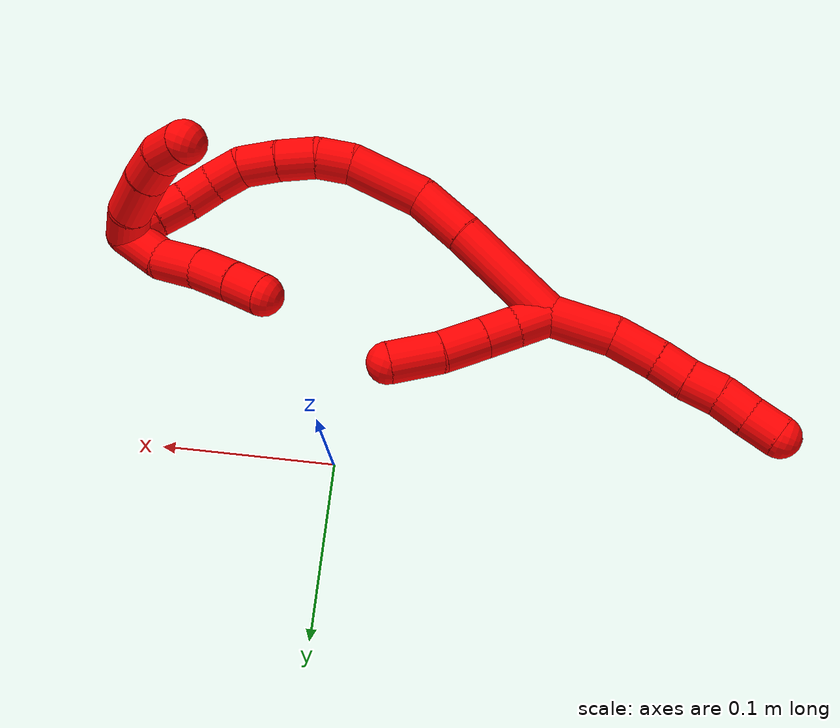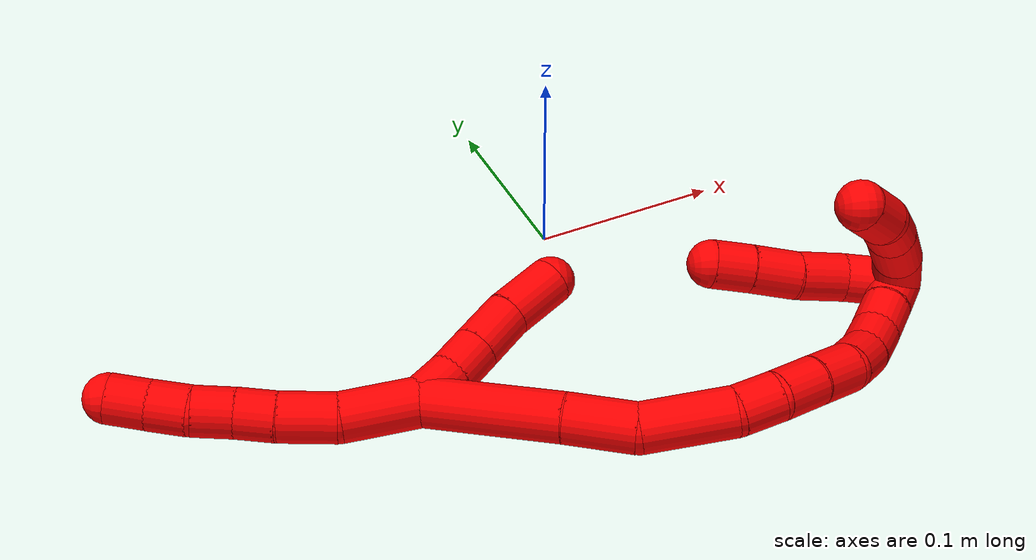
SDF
<sdf version="1.7">
 <world name="default">
  <model name="photoneo_s_sensor">
   <static>1</static>
   <pose>0 0 2 1.57079 1.57079 3.14159</pose>
   <link name="link">
    <inertial><mass>0.1</mass></inertial>
    <sensor name="sensor" type="depth">
     <update_rate>30</update_rate>
     <camera>
      <horizontal_fov>1.22</horizontal_fov>
      <image><width>1920</width><height>1200</height><format>B8G8R8</format></image>
      <clip><near>0.1</near><far>4</far></clip>
      <depth_camera><output>points</output></depth_camera>
     </camera>
     <plugin name="camera_plugin" filename="libgazebo_ros_depth_camera.so">
      <baseline>0.2</baseline>
      <alwaysOn>1</alwaysOn>
      <updateRate>0.0</updateRate>
      <cameraName>camera_ir</cameraName>
      <imageTopicName>/camera/color/image_raw</imageTopicName>
      <cameraInfoTopicName>/camera/color/camera_info</cameraInfoTopicName>
      <depthImageTopicName>/camera/depth/image_raw</depthImageTopicName>
      <depthImageCameraInfoTopicName>/camera/depth/camera_info</depthImageCameraInfoTopicName>
      <pointCloudTopicName>/camera/depth/points</pointCloudTopicName>
      <frameName>fr_optical</frameName>
      <pointCloudCutoff>0.1</pointCloudCutoff>
      <pointCloudCutoffMax>2.0</pointCloudCutoffMax>
      <distortionK1>0</distortionK1>
      <distortionK2>0</distortionK2>
      <distortionK3>0</distortionK3>
      <distortionT1>0</distortionT1>
      <distortionT2>0</distortionT2>
      <CxPrime>0</CxPrime>
      <Cx>0</Cx>
      <Cy>0</Cy>
      <focalLength>0</focalLength>
      <hackBaseline>0</hackBaseline>
     </plugin>
    </sensor>
   </link>
  </model>
  <model name="bin">
   <static>1</static>
   <link name="bottom">
    <collision name="collision-bottom">
     <pose>0 0 -0.01 0 -0 0</pose>
     <geometry><box><size>0.8 0.6 0.02</size></box></geometry>
     <surface>
      <friction><ode><mu>100</mu><mu2>100</mu2></ode></friction>
      <contact><collide_bitmask>65535</collide_bitmask></contact>
     </surface>
    </collision>
   </link>
   <link name="west_wall">
    <collision name="collision-west_wall">
     <pose>-0.41 0 0.1 0 -0 0</pose>
     <geometry><box><size>0.02 0.6 0.2</size></box></geometry>
     <surface>
      <friction><ode><mu>100</mu><mu2>100</mu2></ode></friction>
      <contact><collide_bitmask>65535</collide_bitmask></contact>
     </surface>
    </collision>
   </link>
   <link name="east_wall">
    <collision name="collision-east_wall">
     <pose>0.41 0 0.1 0 -0 0</pose>
     <geometry><box><size>0.02 0.6 0.2</size></box></geometry>
     <surface>
      <friction><ode><mu>100</mu><mu2>100</mu2></ode></friction>
      <contact><collide_bitmask>65535</collide_bitmask></contact>
     </surface>
    </collision>
   </link>
   <link name="south_wall">
    <collision name="collision-south_wall">
     <pose>0 -0.31 0.1 0 -0 0</pose>
     <geometry><box><size>0.8 0.02 0.2</size></box></geometry>
     <surface>
      <friction><ode><mu>100</mu><mu2>100</mu2></ode></friction>
      <contact><collide_bitmask>65535</collide_bitmask></contact>
     </surface>
    </collision>
   </link>
   <link name="north_wall">
    <collision name="collision-north_wall">
     <pose>0 0.31 0.1 0 -0 0</pose>
     <geometry><box><size>0.8 0.02 0.2</size></box></geometry>
     <surface>
      <friction><ode><mu>100</mu><mu2>100</mu2></ode></friction>
      <contact><collide_bitmask>65535</collide_bitmask></contact>
     </surface>
    </collision>
   </link>
  </model>
  <model name="2">
   <static>0</static>
   <link name="2">
    <collision name="collision-cylinder-e_1_2_8">
     <pose>0.0016 0.001524 -0.019834 -3.06493 0.080258 -1.61665</pose>
     <geometry><cylinder><radius>0.0125</radius><length>0.039914</length></cylinder></geometry>
     <surface>
      <friction><ode><mu>1.16</mu><mu2>1.16</mu2><slip1>0</slip1><slip2>0</slip2></ode></friction>
      <contact><ode><kp>1e+06</kp><kd>1</kd><max_vel>0</max_vel><min_depth>0.001</min_depth></ode></contact>
     </surface>
    </collision>
    <visual name="visual-cylinder-e_1_2_8">
     <pose>0.0016 0.001524 -0.019834 -3.06493 0.080258 -1.61665</pose>
     <geometry><cylinder><radius>0.0125</radius><length>0.039914</length></cylinder></geometry>
     <material><ambient>1 0 0 1</ambient></material>
    </visual>
    <collision name="collision-cylinder-e_2_8_9">
     <pose>0.001254 0.002547 -0.054053 3.10681 -0.134389 -2.63577</pose>
     <geometry><cylinder><radius>0.0125</radius><length>0.029049</length></cylinder></geometry>
     <surface>
      <friction><ode><mu>1.16</mu><mu2>1.16</mu2><slip1>0</slip1><slip2>0</slip2></ode></friction>
      <contact><ode><kp>1e+06</kp><kd>1</kd><max_vel>0</max_vel><min_depth>0.001</min_depth></ode></contact>
     </surface>
    </collision>
    <visual name="visual-cylinder-e_2_8_9">
     <pose>0.001254 0.002547 -0.054053 3.10681 -0.134389 -2.63577</pose>
     <geometry><cylinder><radius>0.0125</radius><length>0.029049</length></cylinder></geometry>
     <material><ambient>1 0 0 1</ambient></material>
    </visual>
    <collision name="collision-cylinder-e_3_9_10">
     <pose>-0.002859 0.001289 -0.078248 3.06459 -0.216809 -2.4612</pose>
     <geometry><cylinder><radius>0.0125</radius><length>0.02015</length></cylinder></geometry>
     <surface>
      <friction><ode><mu>1.16</mu><mu2>1.16</mu2><slip1>0</slip1><slip2>0</slip2></ode></friction>
      <contact><ode><kp>1e+06</kp><kd>1</kd><max_vel>0</max_vel><min_depth>0.001</min_depth></ode></contact>
     </surface>
    </collision>
    <visual name="visual-cylinder-e_3_9_10">
     <pose>-0.002859 0.001289 -0.078248 3.06459 -0.216809 -2.4612</pose>
     <geometry><cylinder><radius>0.0125</radius><length>0.02015</length></cylinder></geometry>
     <material><ambient>1 0 0 1</ambient></material>
    </visual>
    <collision name="collision-cylinder-e_4_10_11">
     <pose>-0.005943 -0.000512 -0.09838 3.04074 -0.088127 -1.43614</pose>
     <geometry><cylinder><radius>0.0125</radius><length>0.02083</length></cylinder></geometry>
     <surface>
      <friction><ode><mu>1.16</mu><mu2>1.16</mu2><slip1>0</slip1><slip2>0</slip2></ode></friction>
      <contact><ode><kp>1e+06</kp><kd>1</kd><max_vel>0</max_vel><min_depth>0.001</min_depth></ode></contact>
     </surface>
    </collision>
    <visual name="visual-cylinder-e_4_10_11">
     <pose>-0.005943 -0.000512 -0.09838 3.04074 -0.088127 -1.43614</pose>
     <geometry><cylinder><radius>0.0125</radius><length>0.02083</length></cylinder></geometry>
     <material><ambient>1 0 0 1</ambient></material>
    </visual>
    <collision name="collision-cylinder-e_5_11_12">
     <pose>-0.009537 -0.002526 -0.118313 3.04106 -0.270317 -2.43293</pose>
     <geometry><cylinder><radius>0.0125</radius><length>0.020047</length></cylinder></geometry>
     <surface>
      <friction><ode><mu>1.16</mu><mu2>1.16</mu2><slip1>0</slip1><slip2>0</slip2></ode></friction>
      <contact><ode><kp>1e+06</kp><kd>1</kd><max_vel>0</max_vel><min_depth>0.001</min_depth></ode></contact>
     </surface>
    </collision>
    <visual name="visual-cylinder-e_5_11_12">
     <pose>-0.009537 -0.002526 -0.118313 3.04106 -0.270317 -2.43293</pose>
     <geometry><cylinder><radius>0.0125</radius><length>0.020047</length></cylinder></geometry>
     <material><ambient>1 0 0 1</ambient></material>
    </visual>
    <collision name="collision-cylinder-e_6_12_6">
     <pose>-0.0145 -0.004906 -0.137561 2.99632 -0.230567 -2.01956</pose>
     <geometry><cylinder><radius>0.0125</radius><length>0.02001</length></cylinder></geometry>
     <surface>
      <friction><ode><mu>1.16</mu><mu2>1.16</mu2><slip1>0</slip1><slip2>0</slip2></ode></friction>
      <contact><ode><kp>1e+06</kp><kd>1</kd><max_vel>0</max_vel><min_depth>0.001</min_depth></ode></contact>
     </surface>
    </collision>
    <visual name="visual-cylinder-e_6_12_6">
     <pose>-0.0145 -0.004906 -0.137561 2.99632 -0.230567 -2.01956</pose>
     <geometry><cylinder><radius>0.0125</radius><length>0.02001</length></cylinder></geometry>
     <material><ambient>1 0 0 1</ambient></material>
    </visual>
    <collision name="collision-cylinder-e_1_2_13">
     <pose>-0.00728 -0.001985 0.00773 0.251372 -0.739488 -0.097862</pose>
     <geometry><cylinder><radius>0.0125</radius><length>0.021606</length></cylinder></geometry>
     <surface>
      <friction><ode><mu>1.16</mu><mu2>1.16</mu2><slip1>0</slip1><slip2>0</slip2></ode></friction>
      <contact><ode><kp>1e+06</kp><kd>1</kd><max_vel>0</max_vel><min_depth>0.001</min_depth></ode></contact>
     </surface>
    </collision>
    <visual name="visual-cylinder-e_1_2_13">
     <pose>-0.00728 -0.001985 0.00773 0.251372 -0.739488 -0.097862</pose>
     <geometry><cylinder><radius>0.0125</radius><length>0.021606</length></cylinder></geometry>
     <material><ambient>1 0 0 1</ambient></material>
    </visual>
    <collision name="collision-cylinder-e_2_13_14">
     <pose>-0.021387 -0.00692 0.022498 0.396832 -0.729878 -0.153331</pose>
     <geometry><cylinder><radius>0.0125</radius><length>0.020477</length></cylinder></geometry>
     <surface>
      <friction><ode><mu>1.16</mu><mu2>1.16</mu2><slip1>0</slip1><slip2>0</slip2></ode></friction>
      <contact><ode><kp>1e+06</kp><kd>1</kd><max_vel>0</max_vel><min_depth>0.001</min_depth></ode></contact>
     </surface>
    </collision>
    <visual name="visual-cylinder-e_2_13_14">
     <pose>-0.021387 -0.00692 0.022498 0.396832 -0.729878 -0.153331</pose>
     <geometry><cylinder><radius>0.0125</radius><length>0.020477</length></cylinder></geometry>
     <material><ambient>1 0 0 1</ambient></material>
    </visual>
    <collision name="collision-cylinder-e_3_14_15">
     <pose>-0.036977 -0.013828 0.038744 0.406072 -0.718414 -0.154303</pose>
     <geometry><cylinder><radius>0.0125</radius><length>0.026626</length></cylinder></geometry>
     <surface>
      <friction><ode><mu>1.16</mu><mu2>1.16</mu2><slip1>0</slip1><slip2>0</slip2></ode></friction>
      <contact><ode><kp>1e+06</kp><kd>1</kd><max_vel>0</max_vel><min_depth>0.001</min_depth></ode></contact>
     </surface>
    </collision>
    <visual name="visual-cylinder-e_3_14_15">
     <pose>-0.036977 -0.013828 0.038744 0.406072 -0.718414 -0.154303</pose>
     <geometry><cylinder><radius>0.0125</radius><length>0.026626</length></cylinder></geometry>
     <material><ambient>1 0 0 1</ambient></material>
    </visual>
    <collision name="collision-cylinder-e_4_15_5">
     <pose>-0.054537 -0.021753 0.060266 0.311585 -0.597206 -0.096616</pose>
     <geometry><cylinder><radius>0.0125</radius><length>0.03129</length></cylinder></geometry>
     <surface>
      <friction><ode><mu>1.16</mu><mu2>1.16</mu2><slip1>0</slip1><slip2>0</slip2></ode></friction>
      <contact><ode><kp>1e+06</kp><kd>1</kd><max_vel>0</max_vel><min_depth>0.001</min_depth></ode></contact>
     </surface>
    </collision>
    <visual name="visual-cylinder-e_4_15_5">
     <pose>-0.054537 -0.021753 0.060266 0.311585 -0.597206 -0.096616</pose>
     <geometry><cylinder><radius>0.0125</radius><length>0.03129</length></cylinder></geometry>
     <material><ambient>1 0 0 1</ambient></material>
    </visual>
    <collision name="collision-cylinder-e_1_2_16">
     <pose>0.013122 -0.000318 0.032404 0.009815 0.384734 0.001912</pose>
     <geometry><cylinder><radius>0.0125</radius><length>0.069923</length></cylinder></geometry>
     <surface>
      <friction><ode><mu>1.16</mu><mu2>1.16</mu2><slip1>0</slip1><slip2>0</slip2></ode></friction>
      <contact><ode><kp>1e+06</kp><kd>1</kd><max_vel>0</max_vel><min_depth>0.001</min_depth></ode></contact>
     </surface>
    </collision>
    <visual name="visual-cylinder-e_1_2_16">
     <pose>0.013122 -0.000318 0.032404 0.009815 0.384734 0.001912</pose>
     <geometry><cylinder><radius>0.0125</radius><length>0.069923</length></cylinder></geometry>
     <material><ambient>1 0 0 1</ambient></material>
    </visual>
    <collision name="collision-cylinder-e_2_16_17">
     <pose>0.032098 0.000306 0.08134 -0.056957 0.3399 -0.009777</pose>
     <geometry><cylinder><radius>0.0125</radius><length>0.035125</length></cylinder></geometry>
     <surface>
      <friction><ode><mu>1.16</mu><mu2>1.16</mu2><slip1>0</slip1><slip2>0</slip2></ode></friction>
      <contact><ode><kp>1e+06</kp><kd>1</kd><max_vel>0</max_vel><min_depth>0.001</min_depth></ode></contact>
     </surface>
    </collision>
    <visual name="visual-cylinder-e_2_16_17">
     <pose>0.032098 0.000306 0.08134 -0.056957 0.3399 -0.009777</pose>
     <geometry><cylinder><radius>0.0125</radius><length>0.035125</length></cylinder></geometry>
     <material><ambient>1 0 0 1</ambient></material>
    </visual>
    <collision name="collision-cylinder-e_3_17_18">
     <pose>0.039164 -0.001857 0.120724 0.135103 0.052441 0.003549</pose>
     <geometry><cylinder><radius>0.0125</radius><length>0.046191</length></cylinder></geometry>
     <surface>
      <friction><ode><mu>1.16</mu><mu2>1.16</mu2><slip1>0</slip1><slip2>0</slip2></ode></friction>
      <contact><ode><kp>1e+06</kp><kd>1</kd><max_vel>0</max_vel><min_depth>0.001</min_depth></ode></contact>
     </surface>
    </collision>
    <visual name="visual-cylinder-e_3_17_18">
     <pose>0.039164 -0.001857 0.120724 0.135103 0.052441 0.003549</pose>
     <geometry><cylinder><radius>0.0125</radius><length>0.046191</length></cylinder></geometry>
     <material><ambient>1 0 0 1</ambient></material>
    </visual>
    <collision name="collision-cylinder-e_4_18_19">
     <pose>0.038046 -0.006637 0.153859 0.161298 -0.219969 -0.01785</pose>
     <geometry><cylinder><radius>0.0125</radius><length>0.021348</length></cylinder></geometry>
     <surface>
      <friction><ode><mu>1.16</mu><mu2>1.16</mu2><slip1>0</slip1><slip2>0</slip2></ode></friction>
      <contact><ode><kp>1e+06</kp><kd>1</kd><max_vel>0</max_vel><min_depth>0.001</min_depth></ode></contact>
     </surface>
    </collision>
    <visual name="visual-cylinder-e_4_18_19">
     <pose>0.038046 -0.006637 0.153859 0.161298 -0.219969 -0.01785</pose>
     <geometry><cylinder><radius>0.0125</radius><length>0.021348</length></cylinder></geometry>
     <material><ambient>1 0 0 1</ambient></material>
    </visual>
    <collision name="collision-cylinder-e_5_19_20">
     <pose>0.030623 -0.008425 0.174664 0.010964 -0.450734 -0.002514</pose>
     <geometry><cylinder><radius>0.0125</radius><length>0.023385</length></cylinder></geometry>
     <surface>
      <friction><ode><mu>1.16</mu><mu2>1.16</mu2><slip1>0</slip1><slip2>0</slip2></ode></friction>
      <contact><ode><kp>1e+06</kp><kd>1</kd><max_vel>0</max_vel><min_depth>0.001</min_depth></ode></contact>
     </surface>
    </collision>
    <visual name="visual-cylinder-e_5_19_20">
     <pose>0.030623 -0.008425 0.174664 0.010964 -0.450734 -0.002514</pose>
     <geometry><cylinder><radius>0.0125</radius><length>0.023385</length></cylinder></geometry>
     <material><ambient>1 0 0 1</ambient></material>
    </visual>
    <collision name="collision-cylinder-e_6_20_21">
     <pose>0.019834 -0.007891 0.195201 -0.064745 -0.516267 0.0171</pose>
     <geometry><cylinder><radius>0.0125</radius><length>0.023075</length></cylinder></geometry>
     <surface>
      <friction><ode><mu>1.16</mu><mu2>1.16</mu2><slip1>0</slip1><slip2>0</slip2></ode></friction>
      <contact><ode><kp>1e+06</kp><kd>1</kd><max_vel>0</max_vel><min_depth>0.001</min_depth></ode></contact>
     </surface>
    </collision>
    <visual name="visual-cylinder-e_6_20_21">
     <pose>0.019834 -0.007891 0.195201 -0.064745 -0.516267 0.0171</pose>
     <geometry><cylinder><radius>0.0125</radius><length>0.023075</length></cylinder></geometry>
     <material><ambient>1 0 0 1</ambient></material>
    </visual>
    <collision name="collision-cylinder-e_7_21_22">
     <pose>0.006421 -0.006112 0.211969 -0.165819 -0.84494 0.074679</pose>
     <geometry><cylinder><radius>0.0125</radius><length>0.020638</length></cylinder></geometry>
     <surface>
      <friction><ode><mu>1.16</mu><mu2>1.16</mu2><slip1>0</slip1><slip2>0</slip2></ode></friction>
      <contact><ode><kp>1e+06</kp><kd>1</kd><max_vel>0</max_vel><min_depth>0.001</min_depth></ode></contact>
     </surface>
    </collision>
    <visual name="visual-cylinder-e_7_21_22">
     <pose>0.006421 -0.006112 0.211969 -0.165819 -0.84494 0.074679</pose>
     <geometry><cylinder><radius>0.0125</radius><length>0.020638</length></cylinder></geometry>
     <material><ambient>1 0 0 1</ambient></material>
    </visual>
    <collision name="collision-cylinder-e_8_22_23">
     <pose>-0.00965 -0.00572 0.22429 0.13199 -0.979098 -0.070399</pose>
     <geometry><cylinder><radius>0.0125</radius><length>0.020129</length></cylinder></geometry>
     <surface>
      <friction><ode><mu>1.16</mu><mu2>1.16</mu2><slip1>0</slip1><slip2>0</slip2></ode></friction>
      <contact><ode><kp>1e+06</kp><kd>1</kd><max_vel>0</max_vel><min_depth>0.001</min_depth></ode></contact>
     </surface>
    </collision>
    <visual name="visual-cylinder-e_8_22_23">
     <pose>-0.00965 -0.00572 0.22429 0.13199 -0.979098 -0.070399</pose>
     <geometry><cylinder><radius>0.0125</radius><length>0.020129</length></cylinder></geometry>
     <material><ambient>1 0 0 1</ambient></material>
    </visual>
    <collision name="collision-cylinder-e_9_23_24">
     <pose>-0.026042 -0.009101 0.235332 0.449497 -0.923098 -0.22644</pose>
     <geometry><cylinder><radius>0.0125</radius><length>0.020159</length></cylinder></geometry>
     <surface>
      <friction><ode><mu>1.16</mu><mu2>1.16</mu2><slip1>0</slip1><slip2>0</slip2></ode></friction>
      <contact><ode><kp>1e+06</kp><kd>1</kd><max_vel>0</max_vel><min_depth>0.001</min_depth></ode></contact>
     </surface>
    </collision>
    <visual name="visual-cylinder-e_9_23_24">
     <pose>-0.026042 -0.009101 0.235332 0.449497 -0.923098 -0.22644</pose>
     <geometry><cylinder><radius>0.0125</radius><length>0.020159</length></cylinder></geometry>
     <material><ambient>1 0 0 1</ambient></material>
    </visual>
    <collision name="collision-cylinder-e_10_24_1">
     <pose>-0.042371 -0.01365 0.246092 0.346328 -0.975423 -0.185039</pose>
     <geometry><cylinder><radius>0.0125</radius><length>0.020027</length></cylinder></geometry>
     <surface>
      <friction><ode><mu>1.16</mu><mu2>1.16</mu2><slip1>0</slip1><slip2>0</slip2></ode></friction>
      <contact><ode><kp>1e+06</kp><kd>1</kd><max_vel>0</max_vel><min_depth>0.001</min_depth></ode></contact>
     </surface>
    </collision>
    <visual name="visual-cylinder-e_10_24_1">
     <pose>-0.042371 -0.01365 0.246092 0.346328 -0.975423 -0.185039</pose>
     <geometry><cylinder><radius>0.0125</radius><length>0.020027</length></cylinder></geometry>
     <material><ambient>1 0 0 1</ambient></material>
    </visual>
    <collision name="collision-cylinder-e_1_1_25">
     <pose>-0.044823 -0.026418 0.248666 1.81518 0.480771 0.608064</pose>
     <geometry><cylinder><radius>0.0125</radius><length>0.025252</length></cylinder></geometry>
     <surface>
      <friction><ode><mu>1.16</mu><mu2>1.16</mu2><slip1>0</slip1><slip2>0</slip2></ode></friction>
      <contact><ode><kp>1e+06</kp><kd>1</kd><max_vel>0</max_vel><min_depth>0.001</min_depth></ode></contact>
     </surface>
    </collision>
    <visual name="visual-cylinder-e_1_1_25">
     <pose>-0.044823 -0.026418 0.248666 1.81518 0.480771 0.608064</pose>
     <geometry><cylinder><radius>0.0125</radius><length>0.025252</length></cylinder></geometry>
     <material><ambient>1 0 0 1</ambient></material>
    </visual>
    <collision name="collision-cylinder-e_2_25_26">
     <pose>-0.029628 -0.048665 0.240041 2.05003 0.630019 0.984925</pose>
     <geometry><cylinder><radius>0.0125</radius><length>0.031758</length></cylinder></geometry>
     <surface>
      <friction><ode><mu>1.16</mu><mu2>1.16</mu2><slip1>0</slip1><slip2>0</slip2></ode></friction>
      <contact><ode><kp>1e+06</kp><kd>1</kd><max_vel>0</max_vel><min_depth>0.001</min_depth></ode></contact>
     </surface>
    </collision>
    <visual name="visual-cylinder-e_2_25_26">
     <pose>-0.029628 -0.048665 0.240041 2.05003 0.630019 0.984925</pose>
     <geometry><cylinder><radius>0.0125</radius><length>0.031758</length></cylinder></geometry>
     <material><ambient>1 0 0 1</ambient></material>
    </visual>
    <collision name="collision-cylinder-e_3_26_27">
     <pose>-0.013811 -0.067258 0.229359 2.15499 0.642163 1.10799</pose>
     <geometry><cylinder><radius>0.0125</radius><length>0.02158</length></cylinder></geometry>
     <surface>
      <friction><ode><mu>1.16</mu><mu2>1.16</mu2><slip1>0</slip1><slip2>0</slip2></ode></friction>
      <contact><ode><kp>1e+06</kp><kd>1</kd><max_vel>0</max_vel><min_depth>0.001</min_depth></ode></contact>
     </surface>
    </collision>
    <visual name="visual-cylinder-e_3_26_27">
     <pose>-0.013811 -0.067258 0.229359 2.15499 0.642163 1.10799</pose>
     <geometry><cylinder><radius>0.0125</radius><length>0.02158</length></cylinder></geometry>
     <material><ambient>1 0 0 1</ambient></material>
    </visual>
    <collision name="collision-cylinder-e_4_27_4">
     <pose>-0.003003 -0.080928 0.217248 2.42011 0.417936 1.02422</pose>
     <geometry><cylinder><radius>0.0125</radius><length>0.02141</length></cylinder></geometry>
     <surface>
      <friction><ode><mu>1.16</mu><mu2>1.16</mu2><slip1>0</slip1><slip2>0</slip2></ode></friction>
      <contact><ode><kp>1e+06</kp><kd>1</kd><max_vel>0</max_vel><min_depth>0.001</min_depth></ode></contact>
     </surface>
    </collision>
    <visual name="visual-cylinder-e_4_27_4">
     <pose>-0.003003 -0.080928 0.217248 2.42011 0.417936 1.02422</pose>
     <geometry><cylinder><radius>0.0125</radius><length>0.02141</length></cylinder></geometry>
     <material><ambient>1 0 0 1</ambient></material>
    </visual>
    <collision name="collision-cylinder-e_1_1_28">
     <pose>-0.053757 -0.016648 0.237863 3.06096 -0.224525 -2.45436</pose>
     <geometry><cylinder><radius>0.0125</radius><length>0.027808</length></cylinder></geometry>
     <surface>
      <friction><ode><mu>1.16</mu><mu2>1.16</mu2><slip1>0</slip1><slip2>0</slip2></ode></friction>
      <contact><ode><kp>1e+06</kp><kd>1</kd><max_vel>0</max_vel><min_depth>0.001</min_depth></ode></contact>
     </surface>
    </collision>
    <visual name="visual-cylinder-e_1_1_28">
     <pose>-0.053757 -0.016648 0.237863 3.06096 -0.224525 -2.45436</pose>
     <geometry><cylinder><radius>0.0125</radius><length>0.027808</length></cylinder></geometry>
     <material><ambient>1 0 0 1</ambient></material>
    </visual>
    <collision name="collision-cylinder-e_2_28_29">
     <pose>-0.055402 -0.020157 0.211261 2.95898 0.108551 1.07104</pose>
     <geometry><cylinder><radius>0.0125</radius><length>0.026782</length></cylinder></geometry>
     <surface>
      <friction><ode><mu>1.16</mu><mu2>1.16</mu2><slip1>0</slip1><slip2>0</slip2></ode></friction>
      <contact><ode><kp>1e+06</kp><kd>1</kd><max_vel>0</max_vel><min_depth>0.001</min_depth></ode></contact>
     </surface>
    </collision>
    <visual name="visual-cylinder-e_2_28_29">
     <pose>-0.055402 -0.020157 0.211261 2.95898 0.108551 1.07104</pose>
     <geometry><cylinder><radius>0.0125</radius><length>0.026782</length></cylinder></geometry>
     <material><ambient>1 0 0 1</ambient></material>
    </visual>
    <collision name="collision-cylinder-e_3_29_30">
     <pose>-0.054055 -0.02557 0.186066 2.89906 -0.008312 -0.068181</pose>
     <geometry><cylinder><radius>0.0125</radius><length>0.024941</length></cylinder></geometry>
     <surface>
      <friction><ode><mu>1.16</mu><mu2>1.16</mu2><slip1>0</slip1><slip2>0</slip2></ode></friction>
      <contact><ode><kp>1e+06</kp><kd>1</kd><max_vel>0</max_vel><min_depth>0.001</min_depth></ode></contact>
     </surface>
    </collision>
    <visual name="visual-cylinder-e_3_29_30">
     <pose>-0.054055 -0.02557 0.186066 2.89906 -0.008312 -0.068181</pose>
     <geometry><cylinder><radius>0.0125</radius><length>0.024941</length></cylinder></geometry>
     <material><ambient>1 0 0 1</ambient></material>
    </visual>
    <collision name="collision-cylinder-e_4_30_3">
     <pose>-0.054545 -0.030609 0.16394 2.94033 -0.037788 -0.370013</pose>
     <geometry><cylinder><radius>0.0125</radius><length>0.020469</length></cylinder></geometry>
     <surface>
      <friction><ode><mu>1.16</mu><mu2>1.16</mu2><slip1>0</slip1><slip2>0</slip2></ode></friction>
      <contact><ode><kp>1e+06</kp><kd>1</kd><max_vel>0</max_vel><min_depth>0.001</min_depth></ode></contact>
     </surface>
    </collision>
    <visual name="visual-cylinder-e_4_30_3">
     <pose>-0.054545 -0.030609 0.16394 2.94033 -0.037788 -0.370013</pose>
     <geometry><cylinder><radius>0.0125</radius><length>0.020469</length></cylinder></geometry>
     <material><ambient>1 0 0 1</ambient></material>
    </visual>
    <collision name="collision-sphere-3">
     <pose>-0.054932 -0.032653 0.153919 0 -0 0</pose>
     <geometry><sphere><radius>0.0125</radius></sphere></geometry>
     <surface>
      <friction><ode><mu>1.16</mu><mu2>1.16</mu2><slip1>0</slip1><slip2>0</slip2></ode></friction>
      <contact><ode><kp>1e+06</kp><kd>1</kd><max_vel>0</max_vel><min_depth>0.001</min_depth></ode></contact>
     </surface>
    </collision>
    <visual name="visual-sphere-3">
     <pose>-0.054932 -0.032653 0.153919 0 -0 0</pose>
     <geometry><sphere><radius>0.0125</radius></sphere></geometry>
     <material><ambient>1 0 0 1</ambient></material>
    </visual>
    <collision name="collision-sphere-30">
     <pose>-0.054159 -0.028564 0.17396 0 -0 0</pose>
     <geometry><sphere><radius>0.0125</radius></sphere></geometry>
     <surface>
      <friction><ode><mu>1.16</mu><mu2>1.16</mu2><slip1>0</slip1><slip2>0</slip2></ode></friction>
      <contact><ode><kp>1e+06</kp><kd>1</kd><max_vel>0</max_vel><min_depth>0.001</min_depth></ode></contact>
     </surface>
    </collision>
    <visual name="visual-sphere-30">
     <pose>-0.054159 -0.028564 0.17396 0 -0 0</pose>
     <geometry><sphere><radius>0.0125</radius></sphere></geometry>
     <material><ambient>1 0 0 1</ambient></material>
    </visual>
    <collision name="collision-sphere-29">
     <pose>-0.053951 -0.022575 0.198171 0 -0 0</pose>
     <geometry><sphere><radius>0.0125</radius></sphere></geometry>
     <surface>
      <friction><ode><mu>1.16</mu><mu2>1.16</mu2><slip1>0</slip1><slip2>0</slip2></ode></friction>
      <contact><ode><kp>1e+06</kp><kd>1</kd><max_vel>0</max_vel><min_depth>0.001</min_depth></ode></contact>
     </surface>
    </collision>
    <visual name="visual-sphere-29">
     <pose>-0.053951 -0.022575 0.198171 0 -0 0</pose>
     <geometry><sphere><radius>0.0125</radius></sphere></geometry>
     <material><ambient>1 0 0 1</ambient></material>
    </visual>
    <collision name="collision-sphere-28">
     <pose>-0.056853 -0.01774 0.224352 0 -0 0</pose>
     <geometry><sphere><radius>0.0125</radius></sphere></geometry>
     <surface>
      <friction><ode><mu>1.16</mu><mu2>1.16</mu2><slip1>0</slip1><slip2>0</slip2></ode></friction>
      <contact><ode><kp>1e+06</kp><kd>1</kd><max_vel>0</max_vel><min_depth>0.001</min_depth></ode></contact>
     </surface>
    </collision>
    <visual name="visual-sphere-28">
     <pose>-0.056853 -0.01774 0.224352 0 -0 0</pose>
     <geometry><sphere><radius>0.0125</radius></sphere></geometry>
     <material><ambient>1 0 0 1</ambient></material>
    </visual>
    <collision name="collision-sphere-4">
     <pose>0.001342 -0.08739 0.209902 0 -0 0</pose>
     <geometry><sphere><radius>0.0125</radius></sphere></geometry>
     <surface>
      <friction><ode><mu>1.16</mu><mu2>1.16</mu2><slip1>0</slip1><slip2>0</slip2></ode></friction>
      <contact><ode><kp>1e+06</kp><kd>1</kd><max_vel>0</max_vel><min_depth>0.001</min_depth></ode></contact>
     </surface>
    </collision>
    <visual name="visual-sphere-4">
     <pose>0.001342 -0.08739 0.209902 0 -0 0</pose>
     <geometry><sphere><radius>0.0125</radius></sphere></geometry>
     <material><ambient>1 0 0 1</ambient></material>
    </visual>
    <collision name="collision-sphere-27">
     <pose>-0.007348 -0.074465 0.224594 0 -0 0</pose>
     <geometry><sphere><radius>0.0125</radius></sphere></geometry>
     <surface>
      <friction><ode><mu>1.16</mu><mu2>1.16</mu2><slip1>0</slip1><slip2>0</slip2></ode></friction>
      <contact><ode><kp>1e+06</kp><kd>1</kd><max_vel>0</max_vel><min_depth>0.001</min_depth></ode></contact>
     </surface>
    </collision>
    <visual name="visual-sphere-27">
     <pose>-0.007348 -0.074465 0.224594 0 -0 0</pose>
     <geometry><sphere><radius>0.0125</radius></sphere></geometry>
     <material><ambient>1 0 0 1</ambient></material>
    </visual>
    <collision name="collision-sphere-26">
     <pose>-0.020273 -0.06005 0.234125 0 -0 0</pose>
     <geometry><sphere><radius>0.0125</radius></sphere></geometry>
     <surface>
      <friction><ode><mu>1.16</mu><mu2>1.16</mu2><slip1>0</slip1><slip2>0</slip2></ode></friction>
      <contact><ode><kp>1e+06</kp><kd>1</kd><max_vel>0</max_vel><min_depth>0.001</min_depth></ode></contact>
     </surface>
    </collision>
    <visual name="visual-sphere-26">
     <pose>-0.020273 -0.06005 0.234125 0 -0 0</pose>
     <geometry><sphere><radius>0.0125</radius></sphere></geometry>
     <material><ambient>1 0 0 1</ambient></material>
    </visual>
    <collision name="collision-sphere-25">
     <pose>-0.038984 -0.03728 0.245957 0 -0 0</pose>
     <geometry><sphere><radius>0.0125</radius></sphere></geometry>
     <surface>
      <friction><ode><mu>1.16</mu><mu2>1.16</mu2><slip1>0</slip1><slip2>0</slip2></ode></friction>
      <contact><ode><kp>1e+06</kp><kd>1</kd><max_vel>0</max_vel><min_depth>0.001</min_depth></ode></contact>
     </surface>
    </collision>
    <visual name="visual-sphere-25">
     <pose>-0.038984 -0.03728 0.245957 0 -0 0</pose>
     <geometry><sphere><radius>0.0125</radius></sphere></geometry>
     <material><ambient>1 0 0 1</ambient></material>
    </visual>
    <collision name="collision-sphere-1">
     <pose>-0.050662 -0.015556 0.251374 0 -0 0</pose>
     <geometry><sphere><radius>0.0125</radius></sphere></geometry>
     <surface>
      <friction><ode><mu>1.16</mu><mu2>1.16</mu2><slip1>0</slip1><slip2>0</slip2></ode></friction>
      <contact><ode><kp>1e+06</kp><kd>1</kd><max_vel>0</max_vel><min_depth>0.001</min_depth></ode></contact>
     </surface>
    </collision>
    <visual name="visual-sphere-1">
     <pose>-0.050662 -0.015556 0.251374 0 -0 0</pose>
     <geometry><sphere><radius>0.0125</radius></sphere></geometry>
     <material><ambient>1 0 0 1</ambient></material>
    </visual>
    <collision name="collision-sphere-24">
     <pose>-0.03408 -0.011744 0.24081 0 -0 0</pose>
     <geometry><sphere><radius>0.0125</radius></sphere></geometry>
     <surface>
      <friction><ode><mu>1.16</mu><mu2>1.16</mu2><slip1>0</slip1><slip2>0</slip2></ode></friction>
      <contact><ode><kp>1e+06</kp><kd>1</kd><max_vel>0</max_vel><min_depth>0.001</min_depth></ode></contact>
     </surface>
    </collision>
    <visual name="visual-sphere-24">
     <pose>-0.03408 -0.011744 0.24081 0 -0 0</pose>
     <geometry><sphere><radius>0.0125</radius></sphere></geometry>
     <material><ambient>1 0 0 1</ambient></material>
    </visual>
    <collision name="collision-sphere-23">
     <pose>-0.018004 -0.006459 0.229855 0 -0 0</pose>
     <geometry><sphere><radius>0.0125</radius></sphere></geometry>
     <surface>
      <friction><ode><mu>1.16</mu><mu2>1.16</mu2><slip1>0</slip1><slip2>0</slip2></ode></friction>
      <contact><ode><kp>1e+06</kp><kd>1</kd><max_vel>0</max_vel><min_depth>0.001</min_depth></ode></contact>
     </surface>
    </collision>
    <visual name="visual-sphere-23">
     <pose>-0.018004 -0.006459 0.229855 0 -0 0</pose>
     <geometry><sphere><radius>0.0125</radius></sphere></geometry>
     <material><ambient>1 0 0 1</ambient></material>
    </visual>
    <collision name="collision-sphere-22">
     <pose>-0.001297 -0.004981 0.218725 0 -0 0</pose>
     <geometry><sphere><radius>0.0125</radius></sphere></geometry>
     <surface>
      <friction><ode><mu>1.16</mu><mu2>1.16</mu2><slip1>0</slip1><slip2>0</slip2></ode></friction>
      <contact><ode><kp>1e+06</kp><kd>1</kd><max_vel>0</max_vel><min_depth>0.001</min_depth></ode></contact>
     </surface>
    </collision>
    <visual name="visual-sphere-22">
     <pose>-0.001297 -0.004981 0.218725 0 -0 0</pose>
     <geometry><sphere><radius>0.0125</radius></sphere></geometry>
     <material><ambient>1 0 0 1</ambient></material>
    </visual>
    <collision name="collision-sphere-21">
     <pose>0.014139 -0.007242 0.205214 0 -0 0</pose>
     <geometry><sphere><radius>0.0125</radius></sphere></geometry>
     <surface>
      <friction><ode><mu>1.16</mu><mu2>1.16</mu2><slip1>0</slip1><slip2>0</slip2></ode></friction>
      <contact><ode><kp>1e+06</kp><kd>1</kd><max_vel>0</max_vel><min_depth>0.001</min_depth></ode></contact>
     </surface>
    </collision>
    <visual name="visual-sphere-21">
     <pose>0.014139 -0.007242 0.205214 0 -0 0</pose>
     <geometry><sphere><radius>0.0125</radius></sphere></geometry>
     <material><ambient>1 0 0 1</ambient></material>
    </visual>
    <collision name="collision-sphere-12">
     <pose>-0.012213 -0.003496 -0.127923 0 -0 0</pose>
     <geometry><sphere><radius>0.0125</radius></sphere></geometry>
     <surface>
      <friction><ode><mu>1.16</mu><mu2>1.16</mu2><slip1>0</slip1><slip2>0</slip2></ode></friction>
      <contact><ode><kp>1e+06</kp><kd>1</kd><max_vel>0</max_vel><min_depth>0.001</min_depth></ode></contact>
     </surface>
    </collision>
    <visual name="visual-sphere-12">
     <pose>-0.012213 -0.003496 -0.127923 0 -0 0</pose>
     <geometry><sphere><radius>0.0125</radius></sphere></geometry>
     <material><ambient>1 0 0 1</ambient></material>
    </visual>
    <collision name="collision-sphere-11">
     <pose>-0.00686 -0.001557 -0.108702 0 -0 0</pose>
     <geometry><sphere><radius>0.0125</radius></sphere></geometry>
     <surface>
      <friction><ode><mu>1.16</mu><mu2>1.16</mu2><slip1>0</slip1><slip2>0</slip2></ode></friction>
      <contact><ode><kp>1e+06</kp><kd>1</kd><max_vel>0</max_vel><min_depth>0.001</min_depth></ode></contact>
     </surface>
    </collision>
    <visual name="visual-sphere-11">
     <pose>-0.00686 -0.001557 -0.108702 0 -0 0</pose>
     <geometry><sphere><radius>0.0125</radius></sphere></geometry>
     <material><ambient>1 0 0 1</ambient></material>
    </visual>
    <collision name="collision-sphere-10">
     <pose>-0.005027 0.000532 -0.088058 0 -0 0</pose>
     <geometry><sphere><radius>0.0125</radius></sphere></geometry>
     <surface>
      <friction><ode><mu>1.16</mu><mu2>1.16</mu2><slip1>0</slip1><slip2>0</slip2></ode></friction>
      <contact><ode><kp>1e+06</kp><kd>1</kd><max_vel>0</max_vel><min_depth>0.001</min_depth></ode></contact>
     </surface>
    </collision>
    <visual name="visual-sphere-10">
     <pose>-0.005027 0.000532 -0.088058 0 -0 0</pose>
     <geometry><sphere><radius>0.0125</radius></sphere></geometry>
     <material><ambient>1 0 0 1</ambient></material>
    </visual>
    <collision name="collision-sphere-9">
     <pose>-0.000692 0.002046 -0.068438 0 -0 0</pose>
     <geometry><sphere><radius>0.0125</radius></sphere></geometry>
     <surface>
      <friction><ode><mu>1.16</mu><mu2>1.16</mu2><slip1>0</slip1><slip2>0</slip2></ode></friction>
      <contact><ode><kp>1e+06</kp><kd>1</kd><max_vel>0</max_vel><min_depth>0.001</min_depth></ode></contact>
     </surface>
    </collision>
    <visual name="visual-sphere-9">
     <pose>-0.000692 0.002046 -0.068438 0 -0 0</pose>
     <geometry><sphere><radius>0.0125</radius></sphere></geometry>
     <material><ambient>1 0 0 1</ambient></material>
    </visual>
    <collision name="collision-sphere-2">
     <geometry><sphere><radius>0.0125</radius></sphere></geometry>
     <surface>
      <friction><ode><mu>1.16</mu><mu2>1.16</mu2><slip1>0</slip1><slip2>0</slip2></ode></friction>
      <contact><ode><kp>1e+06</kp><kd>1</kd><max_vel>0</max_vel><min_depth>0.001</min_depth></ode></contact>
     </surface>
    </collision>
    <visual name="visual-sphere-2">
     <geometry><sphere><radius>0.0125</radius></sphere></geometry>
     <material><ambient>1 0 0 1</ambient></material>
    </visual>
    <collision name="collision-sphere-19">
     <pose>0.035717 -0.00831 0.16414 0 -0 0</pose>
     <geometry><sphere><radius>0.0125</radius></sphere></geometry>
     <surface>
      <friction><ode><mu>1.16</mu><mu2>1.16</mu2><slip1>0</slip1><slip2>0</slip2></ode></friction>
      <contact><ode><kp>1e+06</kp><kd>1</kd><max_vel>0</max_vel><min_depth>0.001</min_depth></ode></contact>
     </surface>
    </collision>
    <visual name="visual-sphere-19">
     <pose>0.035717 -0.00831 0.16414 0 -0 0</pose>
     <geometry><sphere><radius>0.0125</radius></sphere></geometry>
     <material><ambient>1 0 0 1</ambient></material>
    </visual>
    <collision name="collision-sphere-8">
     <pose>0.0032 0.003047 -0.039668 0 -0 0</pose>
     <geometry><sphere><radius>0.0125</radius></sphere></geometry>
     <surface>
      <friction><ode><mu>1.16</mu><mu2>1.16</mu2><slip1>0</slip1><slip2>0</slip2></ode></friction>
      <contact><ode><kp>1e+06</kp><kd>1</kd><max_vel>0</max_vel><min_depth>0.001</min_depth></ode></contact>
     </surface>
    </collision>
    <visual name="visual-sphere-8">
     <pose>0.0032 0.003047 -0.039668 0 -0 0</pose>
     <geometry><sphere><radius>0.0125</radius></sphere></geometry>
     <material><ambient>1 0 0 1</ambient></material>
    </visual>
    <collision name="collision-sphere-6">
     <pose>-0.016786 -0.006316 -0.147199 0 -0 0</pose>
     <geometry><sphere><radius>0.0125</radius></sphere></geometry>
     <surface>
      <friction><ode><mu>1.16</mu><mu2>1.16</mu2><slip1>0</slip1><slip2>0</slip2></ode></friction>
      <contact><ode><kp>1e+06</kp><kd>1</kd><max_vel>0</max_vel><min_depth>0.001</min_depth></ode></contact>
     </surface>
    </collision>
    <visual name="visual-sphere-6">
     <pose>-0.016786 -0.006316 -0.147199 0 -0 0</pose>
     <geometry><sphere><radius>0.0125</radius></sphere></geometry>
     <material><ambient>1 0 0 1</ambient></material>
    </visual>
    <collision name="collision-sphere-13">
     <pose>-0.01456 -0.00397 0.015461 0 -0 0</pose>
     <geometry><sphere><radius>0.0125</radius></sphere></geometry>
     <surface>
      <friction><ode><mu>1.16</mu><mu2>1.16</mu2><slip1>0</slip1><slip2>0</slip2></ode></friction>
      <contact><ode><kp>1e+06</kp><kd>1</kd><max_vel>0</max_vel><min_depth>0.001</min_depth></ode></contact>
     </surface>
    </collision>
    <visual name="visual-sphere-13">
     <pose>-0.01456 -0.00397 0.015461 0 -0 0</pose>
     <geometry><sphere><radius>0.0125</radius></sphere></geometry>
     <material><ambient>1 0 0 1</ambient></material>
    </visual>
    <collision name="collision-sphere-14">
     <pose>-0.028214 -0.009869 0.029536 0 -0 0</pose>
     <geometry><sphere><radius>0.0125</radius></sphere></geometry>
     <surface>
      <friction><ode><mu>1.16</mu><mu2>1.16</mu2><slip1>0</slip1><slip2>0</slip2></ode></friction>
      <contact><ode><kp>1e+06</kp><kd>1</kd><max_vel>0</max_vel><min_depth>0.001</min_depth></ode></contact>
     </surface>
    </collision>
    <visual name="visual-sphere-14">
     <pose>-0.028214 -0.009869 0.029536 0 -0 0</pose>
     <geometry><sphere><radius>0.0125</radius></sphere></geometry>
     <material><ambient>1 0 0 1</ambient></material>
    </visual>
    <collision name="collision-sphere-15">
     <pose>-0.04574 -0.017787 0.047952 0 -0 0</pose>
     <geometry><sphere><radius>0.0125</radius></sphere></geometry>
     <surface>
      <friction><ode><mu>1.16</mu><mu2>1.16</mu2><slip1>0</slip1><slip2>0</slip2></ode></friction>
      <contact><ode><kp>1e+06</kp><kd>1</kd><max_vel>0</max_vel><min_depth>0.001</min_depth></ode></contact>
     </surface>
    </collision>
    <visual name="visual-sphere-15">
     <pose>-0.04574 -0.017787 0.047952 0 -0 0</pose>
     <geometry><sphere><radius>0.0125</radius></sphere></geometry>
     <material><ambient>1 0 0 1</ambient></material>
    </visual>
    <collision name="collision-sphere-5">
     <pose>-0.063335 -0.025719 0.07258 0 -0 0</pose>
     <geometry><sphere><radius>0.0125</radius></sphere></geometry>
     <surface>
      <friction><ode><mu>1.16</mu><mu2>1.16</mu2><slip1>0</slip1><slip2>0</slip2></ode></friction>
      <contact><ode><kp>1e+06</kp><kd>1</kd><max_vel>0</max_vel><min_depth>0.001</min_depth></ode></contact>
     </surface>
    </collision>
    <visual name="visual-sphere-5">
     <pose>-0.063335 -0.025719 0.07258 0 -0 0</pose>
     <geometry><sphere><radius>0.0125</radius></sphere></geometry>
     <material><ambient>1 0 0 1</ambient></material>
    </visual>
    <collision name="collision-sphere-16">
     <pose>0.026243 -0.000636 0.064809 0 -0 0</pose>
     <geometry><sphere><radius>0.0125</radius></sphere></geometry>
     <surface>
      <friction><ode><mu>1.16</mu><mu2>1.16</mu2><slip1>0</slip1><slip2>0</slip2></ode></friction>
      <contact><ode><kp>1e+06</kp><kd>1</kd><max_vel>0</max_vel><min_depth>0.001</min_depth></ode></contact>
     </surface>
    </collision>
    <visual name="visual-sphere-16">
     <pose>0.026243 -0.000636 0.064809 0 -0 0</pose>
     <geometry><sphere><radius>0.0125</radius></sphere></geometry>
     <material><ambient>1 0 0 1</ambient></material>
    </visual>
    <collision name="collision-sphere-17">
     <pose>0.037954 0.001249 0.097871 0 -0 0</pose>
     <geometry><sphere><radius>0.0125</radius></sphere></geometry>
     <surface>
      <friction><ode><mu>1.16</mu><mu2>1.16</mu2><slip1>0</slip1><slip2>0</slip2></ode></friction>
      <contact><ode><kp>1e+06</kp><kd>1</kd><max_vel>0</max_vel><min_depth>0.001</min_depth></ode></contact>
     </surface>
    </collision>
    <visual name="visual-sphere-17">
     <pose>0.037954 0.001249 0.097871 0 -0 0</pose>
     <geometry><sphere><radius>0.0125</radius></sphere></geometry>
     <material><ambient>1 0 0 1</ambient></material>
    </visual>
    <collision name="collision-sphere-18">
     <pose>0.040375 -0.004964 0.143577 0 -0 0</pose>
     <geometry><sphere><radius>0.0125</radius></sphere></geometry>
     <surface>
      <friction><ode><mu>1.16</mu><mu2>1.16</mu2><slip1>0</slip1><slip2>0</slip2></ode></friction>
      <contact><ode><kp>1e+06</kp><kd>1</kd><max_vel>0</max_vel><min_depth>0.001</min_depth></ode></contact>
     </surface>
    </collision>
    <visual name="visual-sphere-18">
     <pose>0.040375 -0.004964 0.143577 0 -0 0</pose>
     <geometry><sphere><radius>0.0125</radius></sphere></geometry>
     <material><ambient>1 0 0 1</ambient></material>
    </visual>
    <collision name="collision-sphere-20">
     <pose>0.02553 -0.008541 0.185188 0 -0 0</pose>
     <geometry><sphere><radius>0.0125</radius></sphere></geometry>
     <surface>
      <friction><ode><mu>1.16</mu><mu2>1.16</mu2><slip1>0</slip1><slip2>0</slip2></ode></friction>
      <contact><ode><kp>1e+06</kp><kd>1</kd><max_vel>0</max_vel><min_depth>0.001</min_depth></ode></contact>
     </surface>
    </collision>
    <visual name="visual-sphere-20">
     <pose>0.02553 -0.008541 0.185188 0 -0 0</pose>
     <geometry><sphere><radius>0.0125</radius></sphere></geometry>
     <material><ambient>1 0 0 1</ambient></material>
    </visual>
    <inertial>
     <pose>-0.009763 -0.013616 0.103119 0 -0 0</pose>
     <mass>0.75</mass>
     <inertia><ixx>4.7e-05</ixx><ixy>0</ixy><ixz>0</ixz><iyy>5.2e-05</iyy><iyz>0</iyz><izz>1.2e-05</izz></inertia>
    </inertial>
   </link>
   <pose>-0.114308 -0.100307 0.013803 -1.59183 -0.218007 -1.86649</pose>
  </model>
 </world>
</sdf>
